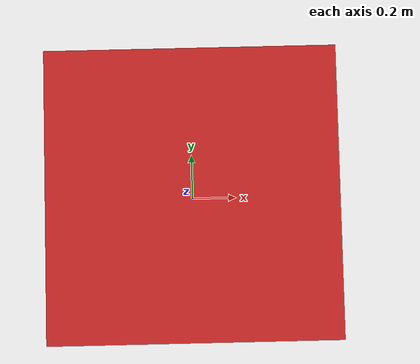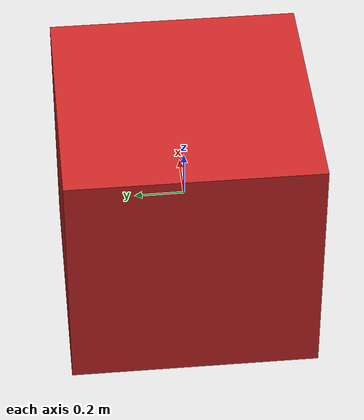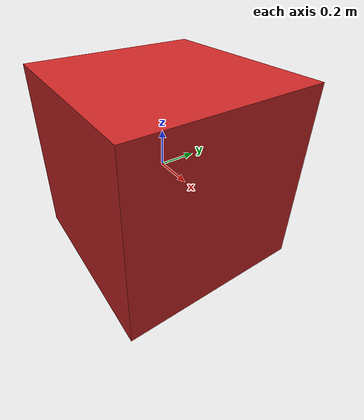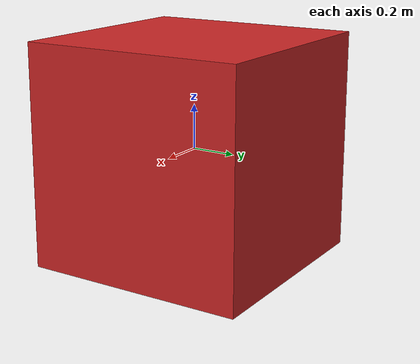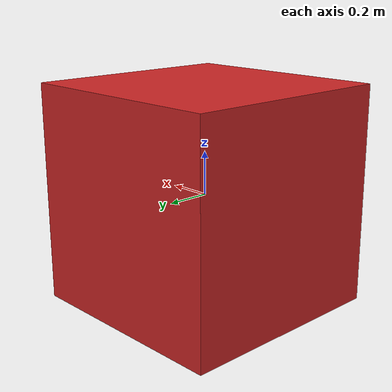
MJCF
<mujoco model="textured_cube">
  <asset>
    <!-- Default texture; object class will overwrite this file path if provided -->
    <texture file="textured_cube_FP_atlas.png" name="tex-textured-cube" type="2d" />
    <material name="textured-cube" reflectance="0.0" shininess="0.0" specular="0.0"
              texrepeat="1 1" texture="tex-textured-cube" texuniform="false" />
    <mesh file="textured_cube_FP_atlas.obj" name="textured_cube_vis" />
  </asset>
  <worldbody>
    <body>
      <body name="object">
        <!-- Visual -->
        <geom type="mesh" mesh="textured_cube_vis" material="textured-cube" conaffinity="0" contype="0" group="1" />
        <!-- Collision proxy; size will be updated by the object class -->
        <geom type="box" size="0.03 0.03 0.03" friction="1.0 0.0 0.0" group="0" rgba="0.8 0.8 0.8 0.3" />
      </body>
      <site rgba="0 0 0 0" size="0.005" pos="0 0 -0.03" name="bottom_site"/>
      <site rgba="0 0 0 0" size="0.005" pos="0 0 0.03" name="top_site"/>
      <site rgba="0 0 0 0" size="0.005" pos="0.03 0.03 0" name="horizontal_radius_site"/>
    </body>
  </worldbody>
</mujoco>
